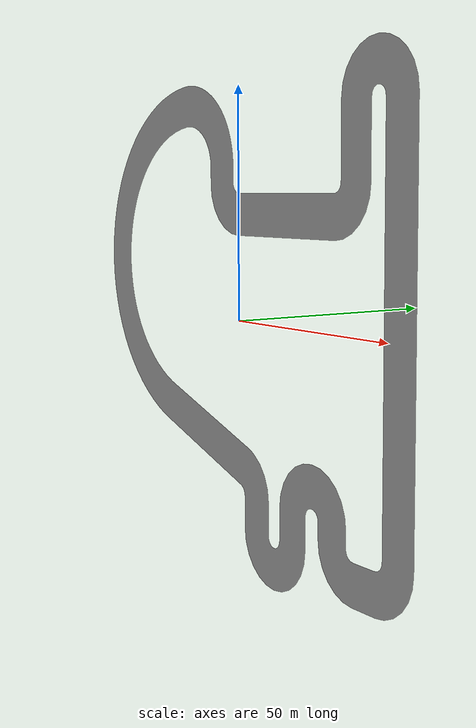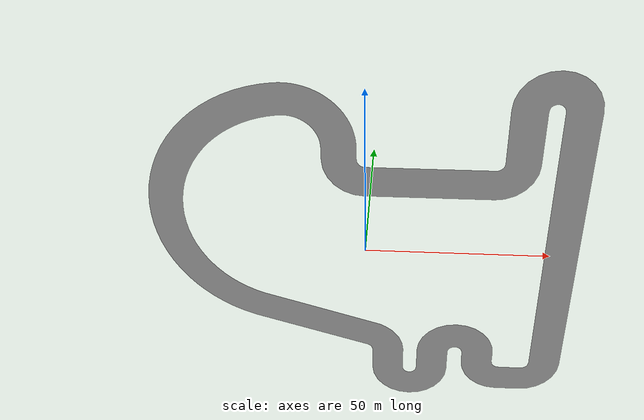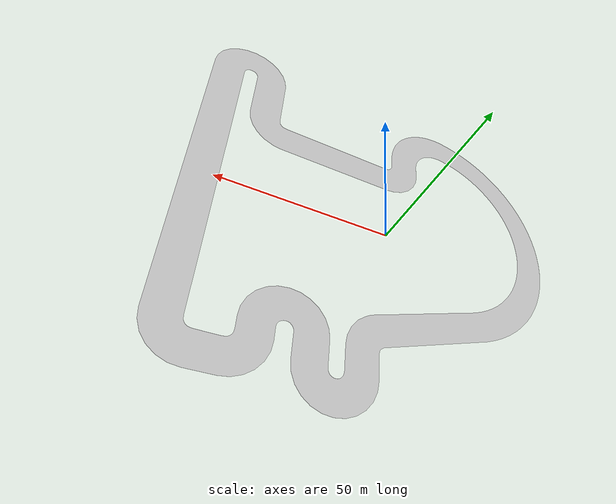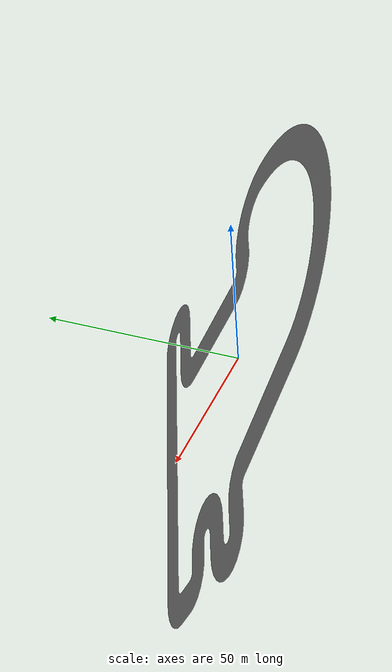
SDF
<?xml version="1.0" ?>
<sdf version="1.3">
    <model name="simple_circuit">
        <static>true</static>
        <link name="simple_circuit">
            <pose>0 0 0 0 0 0</pose>
            <collision name="collision">
                <geometry>
                    <plane>
                        <normal>0 0 1</normal>
                        <size>1000 1000</size>
                    </plane>
                </geometry>
            </collision>
            <visual name="visual">
                <pose>0 0 0 0 0 0</pose>
                <geometry>
                    <mesh>
                        <uri>model://simple_circuit/meshes/simple_line.dae</uri>
                    </mesh>
                </geometry>
            </visual>
        </link>
        <link name="pared">
            <pose>0 0 0 0 0 0</pose>
            <collision name="collision">
                <geometry>
                    <mesh>
                        <uri>model://simple_circuit/meshes/pared.stl</uri>
                    </mesh>
                </geometry>
            </collision>
        </link>
    </model>
</sdf>
